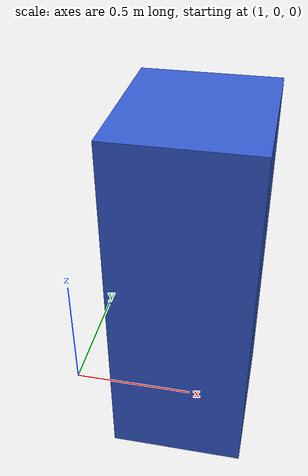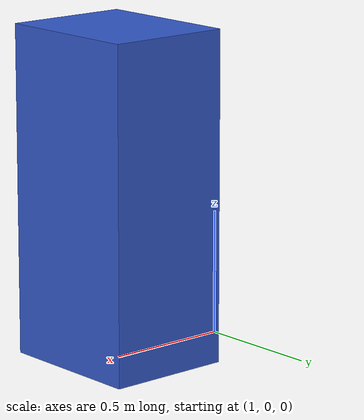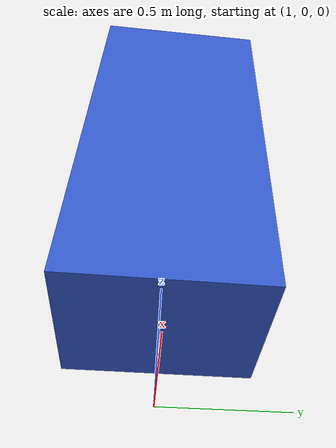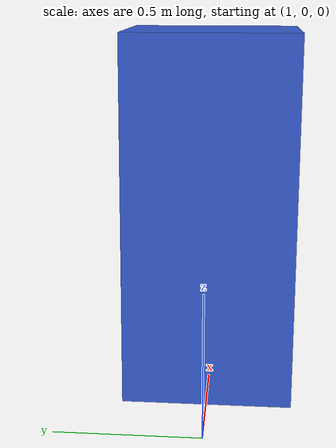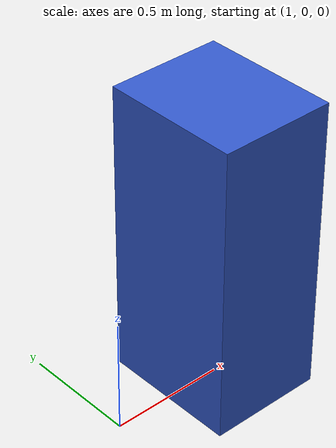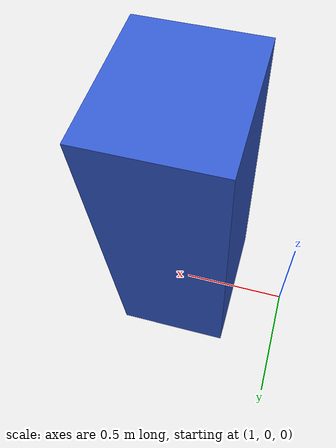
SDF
<sdf version="1.7"><model name="obstacle"><static>true</static><link name="obstacle"><pose>1.5 0 0.65 0 0 0</pose><visual name="obstacle"><geometry><box><size>0.5 0.6 1.3</size></box></geometry><material><diffuse>0.2 0.35 0.8 1</diffuse></material></visual><collision name="obstacle"><geometry><box><size>0.5 0.6 1.3</size></box></geometry></collision></link></model></sdf>
